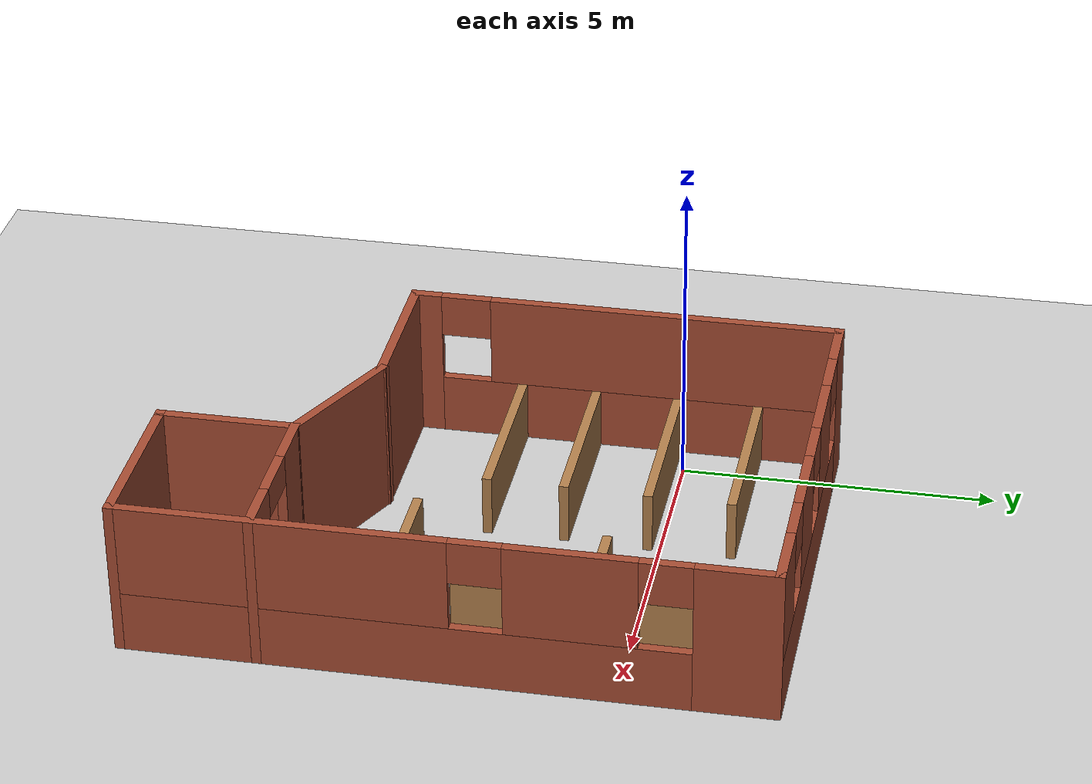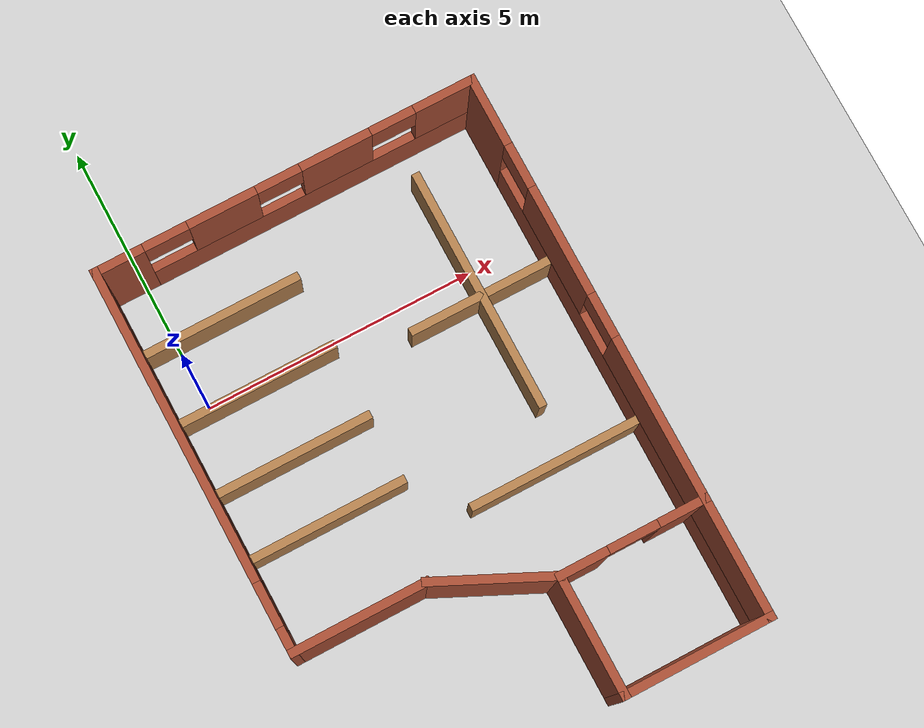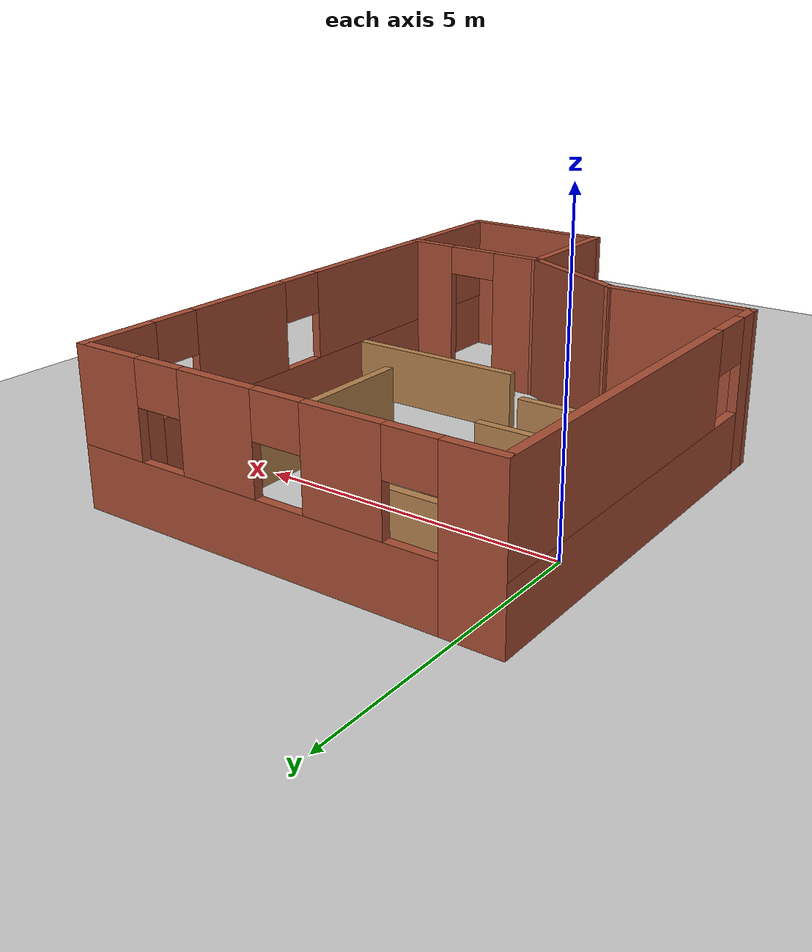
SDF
<sdf version="1.7">
 <world name="default">
  <light name="sun" type="directional">
   <pose>0 0 10 0 -0 0</pose>
   <diffuse>0.8 0.8 0.8 1</diffuse>
   <specular>0.2 0.2 0.2 1</specular>
   <attenuation>
    <range>1000</range>
    <constant>0.9</constant>
    <linear>0.01</linear>
    <quadratic>0.001</quadratic>
   </attenuation>
   <direction>-0.5 0.1 -0.9</direction>
   <spot><inner_angle>0</inner_angle><outer_angle>0</outer_angle><falloff>0</falloff></spot>
  </light>
  <model name="ground_plane">
   <static>1</static>
   <link name="link">
    <collision name="collision">
     <geometry><plane><normal>0 0 1</normal><size>100 100</size></plane></geometry>
     <surface><friction><ode><mu>100</mu><mu2>50</mu2></ode></friction></surface>
    </collision>
    <visual name="visual">
     <cast_shadows>0</cast_shadows>
     <geometry><plane><normal>0 0 1</normal><size>100 100</size></plane></geometry>
     <material>
      <script><uri>file://media/materials/scripts/gazebo.material</uri><name>Gazebo/Grey</name></script>
     </material>
    </visual>
   </link>
  </model>
  <gravity>0 0 -9.8</gravity>
  <magnetic_field>6e-06 2.3e-05 -4.2e-05</magnetic_field>
  <atmosphere type="adiabatic"/>
  <physics type="ode">
   <max_step_size>0.001</max_step_size>
   <real_time_factor>1</real_time_factor>
   <real_time_update_rate>1000</real_time_update_rate>
  </physics>
  <scene><ambient>0.4 0.4 0.4 1</ambient><background>0.7 0.7 0.7 1</background><shadows>1</shadows></scene>
  <audio><device>default</device></audio>
  <spherical_coordinates>
   <surface_model>EARTH_WGS84</surface_model>
   <latitude_deg>0</latitude_deg>
   <longitude_deg>0</longitude_deg>
   <elevation>0</elevation>
   <heading_deg>0</heading_deg>
  </spherical_coordinates>
  <model name="closed_warehouse">
   <pose>2.80768 -2.55805 0 0 -0 0</pose>
   <link name="Wall_0">
    <pose>-3.425 1.5 0 0 -0 1.5708</pose>
    <visual name="Wall_0_Visual_0">
     <pose>-3.24318 0 1.25 0 -0 0</pose>
     <geometry><box><size>0.513648 0.15 2.5</size></box></geometry>
     <material>
      <script><uri>file://media/materials/scripts/gazebo.material</uri><name>Gazebo/Bricks</name></script>
      <ambient>1 1 1 1</ambient>
     </material>
     <meta><layer>0</layer></meta>
    </visual>
    <collision name="Wall_0_Collision_0">
     <geometry><box><size>0.513648 0.15 2.5</size></box></geometry>
     <pose>-3.24318 0 1.25 0 -0 0</pose>
    </collision>
    <visual name="Wall_0_Visual_1">
     <pose>0.256824 0 0.5 0 -0 0</pose>
     <geometry><box><size>6.48635 0.15 1</size></box></geometry>
     <material>
      <script><uri>file://media/materials/scripts/gazebo.material</uri><name>Gazebo/Bricks</name></script>
      <ambient>1 1 1 1</ambient>
     </material>
     <meta><layer>0</layer></meta>
    </visual>
    <collision name="Wall_0_Collision_1">
     <geometry><box><size>6.48635 0.15 1</size></box></geometry>
     <pose>0.256824 0 0.5 0 -0 0</pose>
    </collision>
    <visual name="Wall_0_Visual_2">
     <pose>0.656824 0 1.75 0 -0 0</pose>
     <geometry><box><size>5.68635 0.15 1.5</size></box></geometry>
     <material>
      <script><uri>file://media/materials/scripts/gazebo.material</uri><name>Gazebo/Bricks</name></script>
      <ambient>1 1 1 1</ambient>
     </material>
     <meta><layer>0</layer></meta>
    </visual>
    <collision name="Wall_0_Collision_2">
     <geometry><box><size>5.68635 0.15 1.5</size></box></geometry>
     <pose>0.656824 0 1.75 0 -0 0</pose>
    </collision>
    <visual name="Wall_0_Visual_3">
     <pose>-2.58635 0 2.15 0 -0 0</pose>
     <geometry><box><size>0.8 0.15 0.7</size></box></geometry>
     <material>
      <script><uri>file://media/materials/scripts/gazebo.material</uri><name>Gazebo/Bricks</name></script>
      <ambient>1 1 1 1</ambient>
     </material>
     <meta><layer>0</layer></meta>
    </visual>
    <collision name="Wall_0_Collision_3">
     <geometry><box><size>0.8 0.15 0.7</size></box></geometry>
     <pose>-2.58635 0 2.15 0 -0 0</pose>
    </collision>
   </link>
   <link name="Wall_12">
    <collision name="Wall_12_Collision">
     <geometry><box><size>2.25 0.15 2.5</size></box></geometry>
     <pose>0 0 1.25 0 -0 0</pose>
    </collision>
    <visual name="Wall_12_Visual">
     <pose>0 0 1.25 0 -0 0</pose>
     <geometry><box><size>2.25 0.15 2.5</size></box></geometry>
     <material>
      <script><uri>file://media/materials/scripts/gazebo.material</uri><name>Gazebo/Bricks</name></script>
      <ambient>1 1 1 1</ambient>
     </material>
     <meta><layer>0</layer></meta>
    </visual>
    <pose>0.825 -3.875 0 0 -0 1.5708</pose>
   </link>
   <link name="Wall_13">
    <collision name="Wall_13_Collision">
     <geometry><box><size>2.25238 0.15 2.5</size></box></geometry>
     <pose>0 0 1.25 0 -0 0</pose>
    </collision>
    <visual name="Wall_13_Visual">
     <pose>0 0 1.25 0 -0 0</pose>
     <geometry><box><size>2.25238 0.15 2.5</size></box></geometry>
     <material>
      <script><uri>file://media/materials/scripts/gazebo.material</uri><name>Gazebo/Bricks</name></script>
      <ambient>1 1 1 1</ambient>
     </material>
     <meta><layer>0</layer></meta>
    </visual>
    <pose>-0.125 -2.375 0 0 -0 2.69922</pose>
   </link>
   <link name="Wall_16">
    <pose>2.125 -2.825 0 0 -0 0</pose>
    <visual name="Wall_16_Visual_0">
     <pose>-0.905899 0 1.25 0 -0 0</pose>
     <geometry><box><size>0.938203 0.15 2.5</size></box></geometry>
     <material>
      <script><uri>file://media/materials/scripts/gazebo.material</uri><name>Gazebo/Bricks</name></script>
      <ambient>1 1 1 1</ambient>
     </material>
     <meta><layer>0</layer></meta>
    </visual>
    <collision name="Wall_16_Collision_0">
     <geometry><box><size>0.938203 0.15 2.5</size></box></geometry>
     <pose>-0.905899 0 1.25 0 -0 0</pose>
    </collision>
    <visual name="Wall_16_Visual_1">
     <pose>0.919101 0 1.25 0 -0 0</pose>
     <geometry><box><size>0.911797 0.15 2.5</size></box></geometry>
     <material>
      <script><uri>file://media/materials/scripts/gazebo.material</uri><name>Gazebo/Bricks</name></script>
      <ambient>1 1 1 1</ambient>
     </material>
     <meta><layer>0</layer></meta>
    </visual>
    <collision name="Wall_16_Collision_1">
     <geometry><box><size>0.911797 0.15 2.5</size></box></geometry>
     <pose>0.919101 0 1.25 0 -0 0</pose>
    </collision>
    <visual name="Wall_16_Visual_2">
     <pose>0.013203 0 2.25 0 -0 0</pose>
     <geometry><box><size>0.9 0.15 0.5</size></box></geometry>
     <material>
      <script><uri>file://media/materials/scripts/gazebo.material</uri><name>Gazebo/Bricks</name></script>
      <ambient>1 1 1 1</ambient>
     </material>
     <meta><layer>0</layer></meta>
    </visual>
    <collision name="Wall_16_Collision_2">
     <geometry><box><size>0.9 0.15 0.5</size></box></geometry>
     <pose>0.013203 0 2.25 0 -0 0</pose>
    </collision>
   </link>
   <link name="Wall_2">
    <pose>-0 4.925 0 0 -0 0</pose>
    <visual name="Wall_2_Visual_0">
     <pose>-3.03225 0 1.25 0 -0 0</pose>
     <geometry><box><size>0.935509 0.15 2.5</size></box></geometry>
     <material>
      <script><uri>file://media/materials/scripts/gazebo.material</uri><name>Gazebo/Bricks</name></script>
      <ambient>1 1 1 1</ambient>
     </material>
     <meta><layer>0</layer></meta>
    </visual>
    <collision name="Wall_2_Collision_0">
     <geometry><box><size>0.935509 0.15 2.5</size></box></geometry>
     <pose>-3.03225 0 1.25 0 -0 0</pose>
    </collision>
    <visual name="Wall_2_Visual_1">
     <pose>0.467755 0 0.5 0 -0 0</pose>
     <geometry><box><size>6.06449 0.15 1</size></box></geometry>
     <material>
      <script><uri>file://media/materials/scripts/gazebo.material</uri><name>Gazebo/Bricks</name></script>
      <ambient>1 1 1 1</ambient>
     </material>
     <meta><layer>0</layer></meta>
    </visual>
    <collision name="Wall_2_Collision_1">
     <geometry><box><size>6.06449 0.15 1</size></box></geometry>
     <pose>0.467755 0 0.5 0 -0 0</pose>
    </collision>
    <visual name="Wall_2_Visual_2">
     <pose>-1.1454 0 1.75 0 -0 0</pose>
     <geometry><box><size>1.23818 0.15 1.5</size></box></geometry>
     <material>
      <script><uri>file://media/materials/scripts/gazebo.material</uri><name>Gazebo/Bricks</name></script>
      <ambient>1 1 1 1</ambient>
     </material>
     <meta><layer>0</layer></meta>
    </visual>
    <collision name="Wall_2_Collision_2">
     <geometry><box><size>1.23818 0.15 1.5</size></box></geometry>
     <pose>-1.1454 0 1.75 0 -0 0</pose>
    </collision>
    <visual name="Wall_2_Visual_3">
     <pose>0.912885 0 1.75 0 -0 0</pose>
     <geometry><box><size>1.2784 0.15 1.5</size></box></geometry>
     <material>
      <script><uri>file://media/materials/scripts/gazebo.material</uri><name>Gazebo/Bricks</name></script>
      <ambient>1 1 1 1</ambient>
     </material>
     <meta><layer>0</layer></meta>
    </visual>
    <collision name="Wall_2_Collision_3">
     <geometry><box><size>1.2784 0.15 1.5</size></box></geometry>
     <pose>0.912885 0 1.75 0 -0 0</pose>
    </collision>
    <visual name="Wall_2_Visual_4">
     <pose>2.92604 0 1.75 0 -0 0</pose>
     <geometry><box><size>1.14791 0.15 1.5</size></box></geometry>
     <material>
      <script><uri>file://media/materials/scripts/gazebo.material</uri><name>Gazebo/Bricks</name></script>
      <ambient>1 1 1 1</ambient>
     </material>
     <meta><layer>0</layer></meta>
    </visual>
    <collision name="Wall_2_Collision_4">
     <geometry><box><size>1.14791 0.15 1.5</size></box></geometry>
     <pose>2.92604 0 1.75 0 -0 0</pose>
    </collision>
    <visual name="Wall_2_Visual_5">
     <pose>-2.16449 0 2.15 0 -0 0</pose>
     <geometry><box><size>0.8 0.15 0.7</size></box></geometry>
     <material>
      <script><uri>file://media/materials/scripts/gazebo.material</uri><name>Gazebo/Bricks</name></script>
      <ambient>1 1 1 1</ambient>
     </material>
     <meta><layer>0</layer></meta>
    </visual>
    <collision name="Wall_2_Collision_5">
     <geometry><box><size>0.8 0.15 0.7</size></box></geometry>
     <pose>-2.16449 0 2.15 0 -0 0</pose>
    </collision>
    <visual name="Wall_2_Visual_6">
     <pose>-0.126316 0 2.15 0 -0 0</pose>
     <geometry><box><size>0.8 0.15 0.7</size></box></geometry>
     <material>
      <script><uri>file://media/materials/scripts/gazebo.material</uri><name>Gazebo/Bricks</name></script>
      <ambient>1 1 1 1</ambient>
     </material>
     <meta><layer>0</layer></meta>
    </visual>
    <collision name="Wall_2_Collision_6">
     <geometry><box><size>0.8 0.15 0.7</size></box></geometry>
     <pose>-0.126316 0 2.15 0 -0 0</pose>
    </collision>
    <visual name="Wall_2_Visual_7">
     <pose>1.95209 0 2.15 0 -0 0</pose>
     <geometry><box><size>0.8 0.15 0.7</size></box></geometry>
     <material>
      <script><uri>file://media/materials/scripts/gazebo.material</uri><name>Gazebo/Bricks</name></script>
      <ambient>1 1 1 1</ambient>
     </material>
     <meta><layer>0</layer></meta>
    </visual>
    <collision name="Wall_2_Collision_7">
     <geometry><box><size>0.8 0.15 0.7</size></box></geometry>
     <pose>1.95209 0 2.15 0 -0 0</pose>
    </collision>
   </link>
   <link name="Wall_23">
    <collision name="Wall_23_Collision">
     <geometry><box><size>3 0.15 1</size></box></geometry>
     <pose>0 0 0.5 0 -0 0</pose>
    </collision>
    <visual name="Wall_23_Visual">
     <pose>0 0 0.5 0 -0 0</pose>
     <geometry><box><size>3 0.15 1</size></box></geometry>
     <material>
      <script><uri>file://media/materials/scripts/gazebo.material</uri><name>Gazebo/Wood</name></script>
      <ambient>1 1 1 1</ambient>
     </material>
     <meta><layer>0</layer></meta>
    </visual>
    <pose>-1.96209 2.37206 0 0 -0 0</pose>
   </link>
   <link name="Wall_25">
    <collision name="Wall_25_Collision">
     <geometry><box><size>3 0.15 1</size></box></geometry>
     <pose>0 0 0.5 0 -0 0</pose>
    </collision>
    <visual name="Wall_25_Visual">
     <pose>0 0 0.5 0 -0 0</pose>
     <geometry><box><size>3 0.15 1</size></box></geometry>
     <material>
      <script><uri>file://media/materials/scripts/gazebo.material</uri><name>Gazebo/Wood</name></script>
      <ambient>1 1 1 1</ambient>
     </material>
     <meta><layer>0</layer></meta>
    </visual>
    <pose>-1.96209 3.67906 0 0 -0 0</pose>
   </link>
   <link name="Wall_32">
    <collision name="Wall_32_Collision">
     <geometry><box><size>3.25 0.15 1</size></box></geometry>
     <pose>0 0 0.5 0 -0 0</pose>
    </collision>
    <visual name="Wall_32_Visual">
     <pose>0 0 0.5 0 -0 0</pose>
     <geometry><box><size>3.25 0.15 1</size></box></geometry>
     <material>
      <script><uri>file://media/materials/scripts/gazebo.material</uri><name>Gazebo/Wood</name></script>
      <ambient>1 1 1 1</ambient>
     </material>
     <meta><layer>0</layer></meta>
    </visual>
    <pose>1.84291 -1.09394 0 0 -0 0</pose>
   </link>
   <link name="Wall_35">
    <collision name="Wall_35_Collision">
     <geometry><box><size>3 0.15 1</size></box></geometry>
     <pose>0 0 0.5 0 -0 0</pose>
    </collision>
    <visual name="Wall_35_Visual">
     <pose>0 0 0.5 0 -0 0</pose>
     <geometry><box><size>3 0.15 1</size></box></geometry>
     <material>
      <script><uri>file://media/materials/scripts/gazebo.material</uri><name>Gazebo/Wood</name></script>
      <ambient>1 1 1 1</ambient>
     </material>
     <meta><layer>0</layer></meta>
    </visual>
    <pose>-1.99409 -0.169941 0 0 -0 0</pose>
   </link>
   <link name="Wall_37">
    <collision name="Wall_37_Collision">
     <geometry><box><size>3 0.15 1</size></box></geometry>
     <pose>0 0 0.5 0 -0 0</pose>
    </collision>
    <visual name="Wall_37_Visual">
     <pose>0 0 0.5 0 -0 0</pose>
     <geometry><box><size>3 0.15 1</size></box></geometry>
     <material>
      <script><uri>file://media/materials/scripts/gazebo.material</uri><name>Gazebo/Wood</name></script>
      <ambient>1 1 1 1</ambient>
     </material>
     <meta><layer>0</layer></meta>
    </visual>
    <pose>-1.99502 1.04706 0 0 -0 0</pose>
   </link>
   <link name="Wall_4">
    <pose>3.425 0 0 0 -0 -1.5708</pose>
    <visual name="Wall_4_Visual_0">
     <pose>-4.34635 0 1.25 0 -0 0</pose>
     <geometry><box><size>1.30729 0.15 2.5</size></box></geometry>
     <material>
      <script><uri>file://media/materials/scripts/gazebo.material</uri><name>Gazebo/Bricks</name></script>
      <ambient>1 1 1 1</ambient>
     </material>
     <meta><layer>0</layer></meta>
    </visual>
    <collision name="Wall_4_Collision_0">
     <geometry><box><size>1.30729 0.15 2.5</size></box></geometry>
     <pose>-4.34635 0 1.25 0 -0 0</pose>
    </collision>
    <visual name="Wall_4_Visual_1">
     <pose>0.653647 0 0.5 0 -0 0</pose>
     <geometry><box><size>8.69271 0.15 1</size></box></geometry>
     <material>
      <script><uri>file://media/materials/scripts/gazebo.material</uri><name>Gazebo/Bricks</name></script>
      <ambient>1 1 1 1</ambient>
     </material>
     <meta><layer>0</layer></meta>
    </visual>
    <collision name="Wall_4_Collision_1">
     <geometry><box><size>8.69271 0.15 1</size></box></geometry>
     <pose>0.653647 0 0.5 0 -0 0</pose>
    </collision>
    <visual name="Wall_4_Visual_2">
     <pose>-1.89904 0 1.75 0 -0 0</pose>
     <geometry><box><size>1.98734 0.15 1.5</size></box></geometry>
     <material>
      <script><uri>file://media/materials/scripts/gazebo.material</uri><name>Gazebo/Bricks</name></script>
      <ambient>1 1 1 1</ambient>
     </material>
     <meta><layer>0</layer></meta>
    </visual>
    <collision name="Wall_4_Collision_2">
     <geometry><box><size>1.98734 0.15 1.5</size></box></geometry>
     <pose>-1.89904 0 1.75 0 -0 0</pose>
    </collision>
    <visual name="Wall_4_Visual_3">
     <pose>2.44732 0 1.75 0 -0 0</pose>
     <geometry><box><size>5.10537 0.15 1.5</size></box></geometry>
     <material>
      <script><uri>file://media/materials/scripts/gazebo.material</uri><name>Gazebo/Bricks</name></script>
      <ambient>1 1 1 1</ambient>
     </material>
     <meta><layer>0</layer></meta>
    </visual>
    <collision name="Wall_4_Collision_3">
     <geometry><box><size>5.10537 0.15 1.5</size></box></geometry>
     <pose>2.44732 0 1.75 0 -0 0</pose>
    </collision>
    <visual name="Wall_4_Visual_4">
     <pose>-3.29271 0 2.15 0 -0 0</pose>
     <geometry><box><size>0.8 0.15 0.7</size></box></geometry>
     <material>
      <script><uri>file://media/materials/scripts/gazebo.material</uri><name>Gazebo/Bricks</name></script>
      <ambient>1 1 1 1</ambient>
     </material>
     <meta><layer>0</layer></meta>
    </visual>
    <collision name="Wall_4_Collision_4">
     <geometry><box><size>0.8 0.15 0.7</size></box></geometry>
     <pose>-3.29271 0 2.15 0 -0 0</pose>
    </collision>
    <visual name="Wall_4_Visual_5">
     <pose>-0.505367 0 2.15 0 -0 0</pose>
     <geometry><box><size>0.8 0.15 0.7</size></box></geometry>
     <material>
      <script><uri>file://media/materials/scripts/gazebo.material</uri><name>Gazebo/Bricks</name></script>
      <ambient>1 1 1 1</ambient>
     </material>
     <meta><layer>0</layer></meta>
    </visual>
    <collision name="Wall_4_Collision_5">
     <geometry><box><size>0.8 0.15 0.7</size></box></geometry>
     <pose>-0.505367 0 2.15 0 -0 0</pose>
    </collision>
   </link>
   <link name="Wall_46">
    <collision name="Wall_46_Collision">
     <geometry><box><size>2.75 0.15 1</size></box></geometry>
     <pose>0 0 0.5 0 -0 0</pose>
    </collision>
    <visual name="Wall_46_Visual">
     <pose>0 0 0.5 0 -0 0</pose>
     <geometry><box><size>2.75 0.15 1</size></box></geometry>
     <material>
      <script><uri>file://media/materials/scripts/gazebo.material</uri><name>Gazebo/Wood</name></script>
      <ambient>1 1 1 1</ambient>
     </material>
     <meta><layer>0</layer></meta>
    </visual>
    <pose>2.09191 1.95606 0 0 -0 3.14159</pose>
   </link>
   <link name="Wall_48">
    <collision name="Wall_48_Collision">
     <geometry><box><size>4.5 0.15 1</size></box></geometry>
     <pose>0 0 0.5 0 -0 0</pose>
    </collision>
    <visual name="Wall_48_Visual">
     <pose>0 0 0.5 0 -0 0</pose>
     <geometry><box><size>4.5 0.15 1</size></box></geometry>
     <material>
      <script><uri>file://media/materials/scripts/gazebo.material</uri><name>Gazebo/Wood</name></script>
      <ambient>1 1 1 1</ambient>
     </material>
     <meta><layer>0</layer></meta>
    </visual>
    <pose>2.07491 2.07306 0 0 -0 -1.5708</pose>
   </link>
   <link name="Wall_6">
    <collision name="Wall_6_Collision">
     <geometry><box><size>2.5 0.15 2.5</size></box></geometry>
     <pose>0 0 1.25 0 -0 0</pose>
    </collision>
    <visual name="Wall_6_Visual">
     <pose>0 0 1.25 0 -0 0</pose>
     <geometry><box><size>2.5 0.15 2.5</size></box></geometry>
     <material>
      <script><uri>file://media/materials/scripts/gazebo.material</uri><name>Gazebo/Bricks</name></script>
      <ambient>1 1 1 1</ambient>
     </material>
     <meta><layer>0</layer></meta>
    </visual>
    <pose>-2.25 -1.925 0 0 -0 0</pose>
   </link>
   <link name="Wall_8">
    <collision name="Wall_8_Collision">
     <geometry><box><size>2.75 0.15 2.5</size></box></geometry>
     <pose>0 0 1.25 0 -0 0</pose>
    </collision>
    <visual name="Wall_8_Visual">
     <pose>0 0 1.25 0 -0 0</pose>
     <geometry><box><size>2.75 0.15 2.5</size></box></geometry>
     <material>
      <script><uri>file://media/materials/scripts/gazebo.material</uri><name>Gazebo/Bricks</name></script>
      <ambient>1 1 1 1</ambient>
     </material>
     <meta><layer>0</layer></meta>
    </visual>
    <pose>2.125 -4.925 0 0 -0 3.14159</pose>
   </link>
   <static>1</static>
  </model>
 </world>
</sdf>
